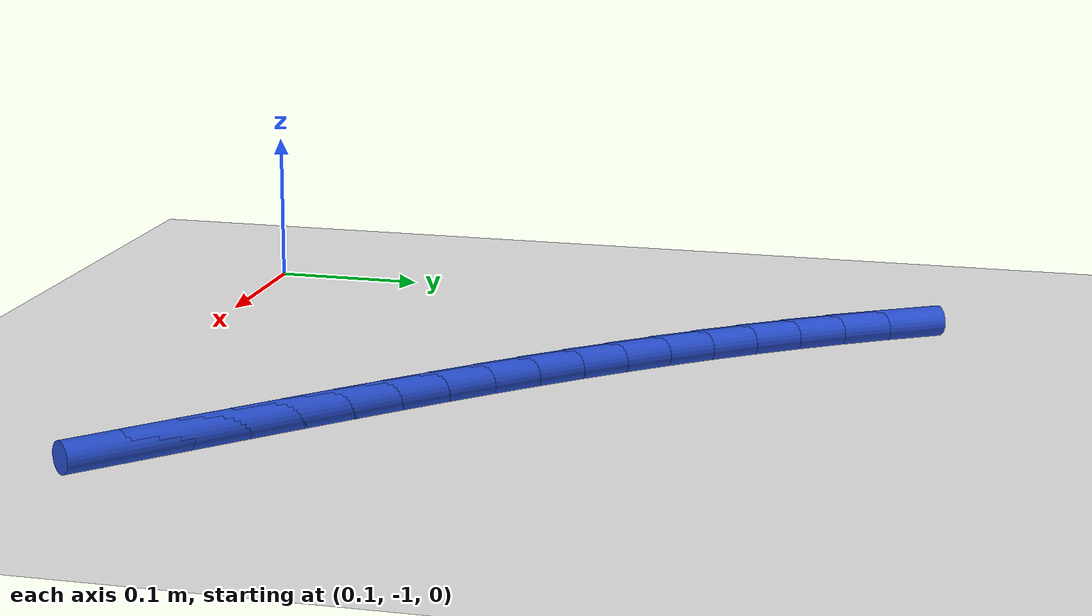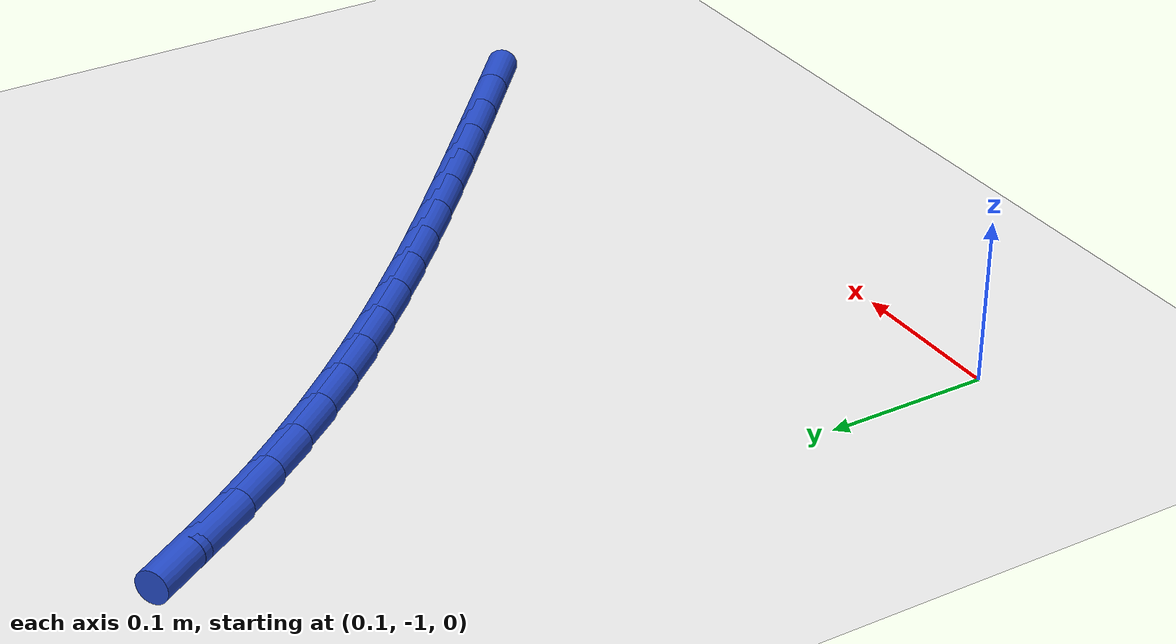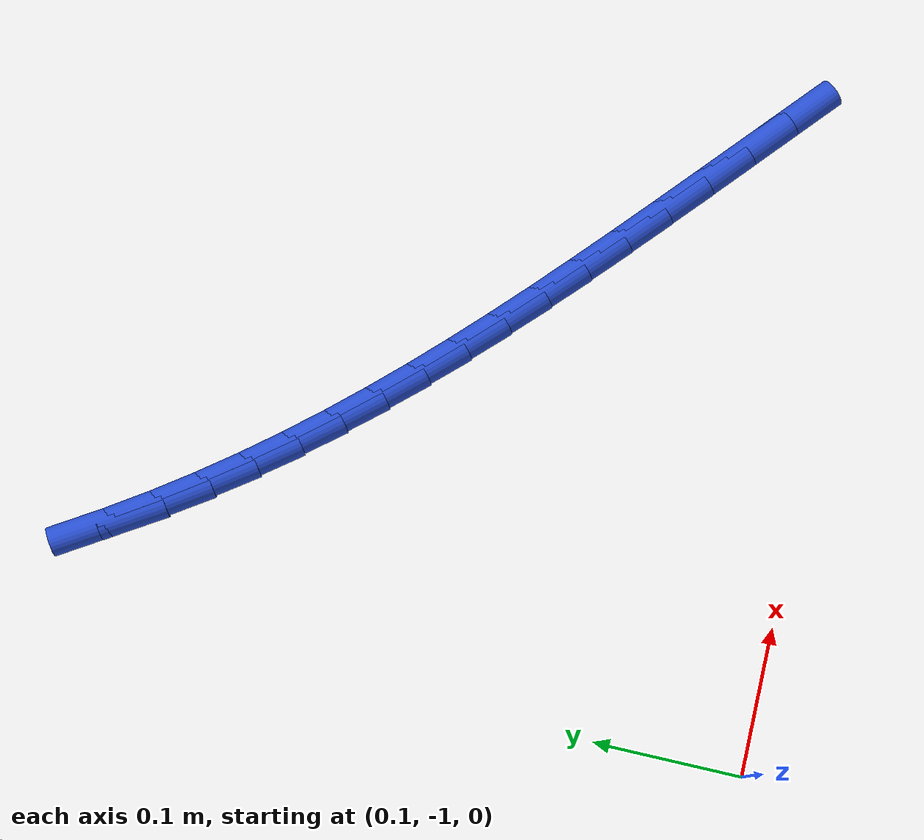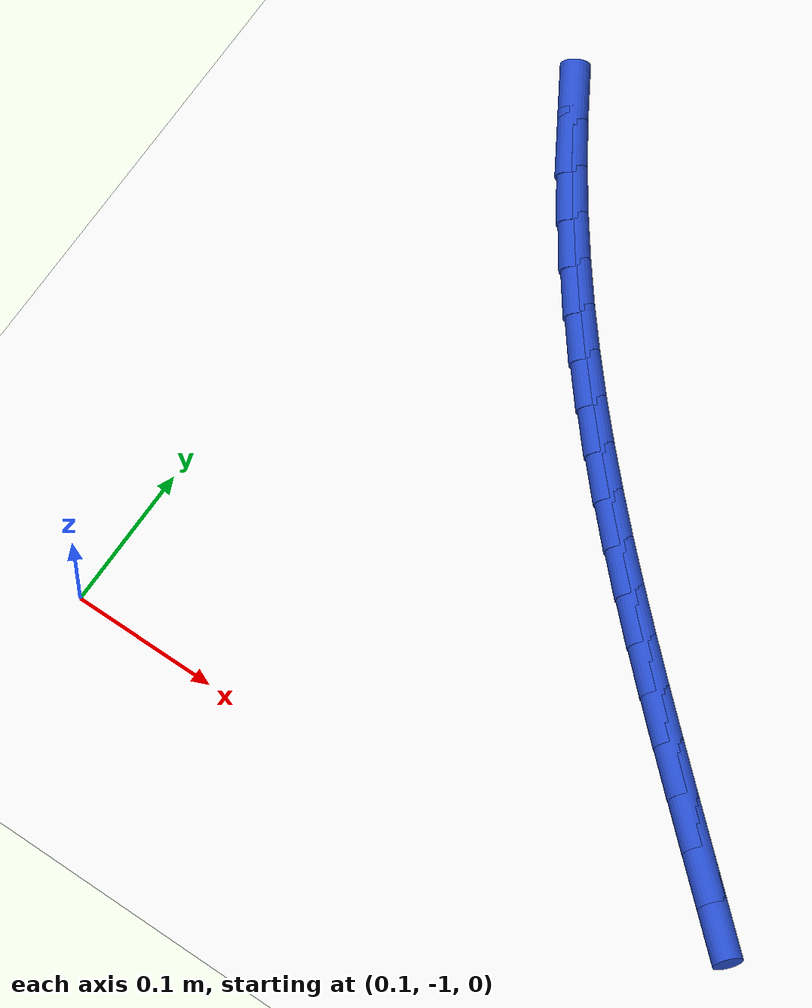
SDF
<sdf version="1.6">
 <world name="default">
  <model name="ground_plane">
   <static>1</static>
   <link name="link">
    <collision name="collision">
     <geometry><plane><normal>0 0 1</normal><size>100 100</size></plane></geometry>
     <surface><friction><ode><mu>100</mu><mu2>50</mu2></ode></friction></surface>
    </collision>
    <visual name="visual">
     <cast_shadows>0</cast_shadows>
     <geometry><plane><normal>0 0 1</normal><size>100 100</size></plane></geometry>
     <material>
      <script><uri>file://media/materials/scripts/gazebo.material</uri><name>Gazebo/WhiteGlow</name></script>
     </material>
    </visual>
   </link>
  </model>
  <model name="line">
   <link name="link_177">
    <pose>0.5400221189089605 -0.9390292264282473 0.01 0 1.57 -0.7148144228411791</pose>
    <collision name="collision">
     <geometry><cylinder><radius>0.01</radius><length>0.08</length></cylinder></geometry>
    </collision>
    <visual name="visual">
     <material>
      <script><name>Gazebo/Blue</name><uri>file://media/materials/scripts/gazebo.material</uri></script>
     </material>
     <geometry><cylinder><radius>0.01</radius><length>0.08</length></cylinder></geometry>
    </visual>
   </link>
   <link name="link_178">
    <pose>0.5114877372971769 -0.9142632440924423 0.01 0 1.57 -0.7154331029774789</pose>
    <collision name="collision">
     <geometry><cylinder><radius>0.01</radius><length>0.08</length></cylinder></geometry>
    </collision>
    <visual name="visual">
     <material>
      <script><name>Gazebo/Blue</name><uri>file://media/materials/scripts/gazebo.material</uri></script>
     </material>
     <geometry><cylinder><radius>0.01</radius><length>0.08</length></cylinder></geometry>
    </visual>
   </link>
   <link name="link_179">
    <pose>0.483734297614333 -0.8901449470165188 0.01 0 1.57 -0.718263501338707</pose>
    <collision name="collision">
     <geometry><cylinder><radius>0.01</radius><length>0.08</length></cylinder></geometry>
    </collision>
    <visual name="visual">
     <material>
      <script><name>Gazebo/Blue</name><uri>file://media/materials/scripts/gazebo.material</uri></script>
     </material>
     <geometry><cylinder><radius>0.01</radius><length>0.08</length></cylinder></geometry>
    </visual>
   </link>
   <link name="link_180">
    <pose>0.4567453497152496 -0.8665565992140608 0.01 0 1.57 -0.7234589740085852</pose>
    <collision name="collision">
     <geometry><cylinder><radius>0.01</radius><length>0.08</length></cylinder></geometry>
    </collision>
    <visual name="visual">
     <material>
      <script><name>Gazebo/Blue</name><uri>file://media/materials/scripts/gazebo.material</uri></script>
     </material>
     <geometry><cylinder><radius>0.01</radius><length>0.08</length></cylinder></geometry>
    </visual>
   </link>
   <link name="link_181">
    <pose>0.4305044434547476 -0.8433804646986508 0.01 0 1.57 -0.7311508645957695</pose>
    <collision name="collision">
     <geometry><cylinder><radius>0.01</radius><length>0.08</length></cylinder></geometry>
    </collision>
    <visual name="visual">
     <material>
      <script><name>Gazebo/Blue</name><uri>file://media/materials/scripts/gazebo.material</uri></script>
     </material>
     <geometry><cylinder><radius>0.01</radius><length>0.08</length></cylinder></geometry>
    </visual>
   </link>
   <link name="link_182">
    <pose>0.4049951286876479 -0.8204988074838727 0.01 0 1.57 -0.7414412844610759</pose>
    <collision name="collision">
     <geometry><cylinder><radius>0.01</radius><length>0.08</length></cylinder></geometry>
    </collision>
    <visual name="visual">
     <material>
      <script><name>Gazebo/Blue</name><uri>file://media/materials/scripts/gazebo.material</uri></script>
     </material>
     <geometry><cylinder><radius>0.01</radius><length>0.08</length></cylinder></geometry>
    </visual>
   </link>
   <link name="link_183">
    <pose>0.38020095526877085 -0.7977938915833093 0.01 0 1.57 -0.75439551026175</pose>
    <collision name="collision">
     <geometry><cylinder><radius>0.01</radius><length>0.08</length></cylinder></geometry>
    </collision>
    <visual name="visual">
     <material>
      <script><name>Gazebo/Blue</name><uri>file://media/materials/scripts/gazebo.material</uri></script>
     </material>
     <geometry><cylinder><radius>0.01</radius><length>0.08</length></cylinder></geometry>
    </visual>
   </link>
   <link name="link_184">
    <pose>0.3561054730529383 -0.7751479810105449 0.01 0 1.57 -0.7700344013352807</pose>
    <collision name="collision">
     <geometry><cylinder><radius>0.01</radius><length>0.08</length></cylinder></geometry>
    </collision>
    <visual name="visual">
     <material>
      <script><name>Gazebo/Blue</name><uri>file://media/materials/scripts/gazebo.material</uri></script>
     </material>
     <geometry><cylinder><radius>0.01</radius><length>0.08</length></cylinder></geometry>
    </visual>
   </link>
   <link name="link_185">
    <pose>0.33269223189497094 -0.7524433397791628 0.01 0 1.57 -0.7883274089040927</pose>
    <collision name="collision">
     <geometry><cylinder><radius>0.01</radius><length>0.08</length></cylinder></geometry>
    </collision>
    <visual name="visual">
     <material>
      <script><name>Gazebo/Blue</name><uri>file://media/materials/scripts/gazebo.material</uri></script>
     </material>
     <geometry><cylinder><radius>0.01</radius><length>0.08</length></cylinder></geometry>
    </visual>
   </link>
   <link name="link_186">
    <pose>0.30994478164968936 -0.7295622319027462 0.01 0 1.57 -0.8091869079892761</pose>
    <collision name="collision">
     <geometry><cylinder><radius>0.01</radius><length>0.08</length></cylinder></geometry>
    </collision>
    <visual name="visual">
     <material>
      <script><name>Gazebo/Blue</name><uri>file://media/materials/scripts/gazebo.material</uri></script>
     </material>
     <geometry><cylinder><radius>0.01</radius><length>0.08</length></cylinder></geometry>
    </visual>
   </link>
   <link name="link_187">
    <pose>0.2878466721719144 -0.7063869213948779 0.01 0 1.57 -0.8324646879599373</pose>
    <collision name="collision">
     <geometry><cylinder><radius>0.01</radius><length>0.08</length></cylinder></geometry>
    </collision>
    <visual name="visual">
     <material>
      <script><name>Gazebo/Blue</name><uri>file://media/materials/scripts/gazebo.material</uri></script>
     </material>
     <geometry><cylinder><radius>0.01</radius><length>0.08</length></cylinder></geometry>
    </visual>
   </link>
   <link name="link_188">
    <pose>0.26638145331646723 -0.6827996722691423 0.01 0 1.57 -0.8579514363195073</pose>
    <collision name="collision">
     <geometry><cylinder><radius>0.01</radius><length>0.08</length></cylinder></geometry>
    </collision>
    <visual name="visual">
     <material>
      <script><name>Gazebo/Blue</name><uri>file://media/materials/scripts/gazebo.material</uri></script>
     </material>
     <geometry><cylinder><radius>0.01</radius><length>0.08</length></cylinder></geometry>
    </visual>
   </link>
   <link name="link_189">
    <pose>0.2455326749381681 -0.6586827485391217 0.01 0 1.57 -0.8853798949240866</pose>
    <collision name="collision">
     <geometry><cylinder><radius>0.01</radius><length>0.08</length></cylinder></geometry>
    </collision>
    <visual name="visual">
     <material>
      <script><name>Gazebo/Blue</name><uri>file://media/materials/scripts/gazebo.material</uri></script>
     </material>
     <geometry><cylinder><radius>0.01</radius><length>0.08</length></cylinder></geometry>
    </visual>
   </link>
   <link name="link_190">
    <pose>0.22528388689183887 -0.6339184142184007 0.01 0 1.57 -0.9144320359339027</pose>
    <collision name="collision">
     <geometry><cylinder><radius>0.01</radius><length>0.08</length></cylinder></geometry>
    </collision>
    <visual name="visual">
     <material>
      <script><name>Gazebo/Blue</name><uri>file://media/materials/scripts/gazebo.material</uri></script>
     </material>
     <geometry><cylinder><radius>0.01</radius><length>0.08</length></cylinder></geometry>
    </visual>
   </link>
   <link name="link_191">
    <pose>0.2056186390322999 -0.6083889333205621 0.01 0 1.57 -0.9447501196753851</pose>
    <collision name="collision">
     <geometry><cylinder><radius>0.01</radius><length>0.08</length></cylinder></geometry>
    </collision>
    <visual name="visual">
     <material>
      <script><name>Gazebo/Blue</name><uri>file://media/materials/scripts/gazebo.material</uri></script>
     </material>
     <geometry><cylinder><radius>0.01</radius><length>0.08</length></cylinder></geometry>
    </visual>
   </link>
   <link name="link_192">
    <pose>0.18652048121437217 -0.5819765698591894 0.01 0 1.57 -0.9759459928642272</pose>
    <collision name="collision">
     <geometry><cylinder><radius>0.01</radius><length>0.08</length></cylinder></geometry>
    </collision>
    <visual name="visual">
     <material>
      <script><name>Gazebo/Blue</name><uri>file://media/materials/scripts/gazebo.material</uri></script>
     </material>
     <geometry><cylinder><radius>0.01</radius><length>0.08</length></cylinder></geometry>
    </visual>
   </link>
   <link name="link_193">
    <pose>0.16797353949138055 -0.5545647314355241 0.01 0 1.57 -1.007379568553184</pose>
    <collision name="collision">
     <geometry><cylinder><radius>0.01</radius><length>0.08</length></cylinder></geometry>
    </collision>
    <visual name="visual">
     <material>
      <script><name>Gazebo/Blue</name><uri>file://media/materials/scripts/gazebo.material</uri></script>
     </material>
     <geometry><cylinder><radius>0.01</radius><length>0.08</length></cylinder></geometry>
    </visual>
   </link>
  </model>
 </world>
</sdf>
